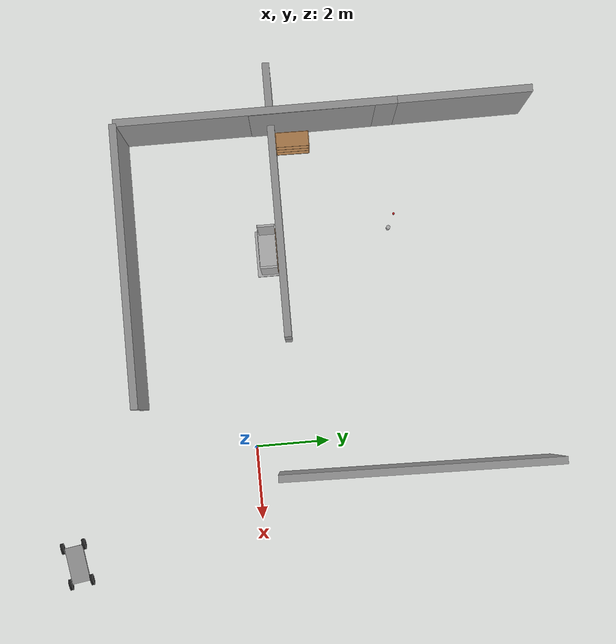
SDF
<sdf version="1.4">
 <world name="default">
  <model name="ground_plane_0">
   <static>1</static>
   <link name="link">
    <collision name="collision">
     <geometry><plane><normal>0 0 1</normal><size>100 100</size></plane></geometry>
     <surface><friction><ode><mu>100</mu><mu2>50</mu2></ode></friction></surface>
    </collision>
    <visual name="visual">
     <cast_shadows>0</cast_shadows>
     <geometry><plane><normal>0 0 1</normal><size>100 100</size></plane></geometry>
     <material>
      <script><uri>file://media/materials/scripts/gazebo.material</uri><name>Gazebo/Grey</name></script>
     </material>
    </visual>
    <velocity_decay><linear>0</linear><angular>0</angular></velocity_decay>
   </link>
   <pose>0.497681 0 0 0 -0 0</pose>
  </model>
  <model name="beer">
   <link name="link">
    <pose>0 0 0.115 0 -0 0</pose>
    <inertial>
     <mass>0.39</mass>
     <inertia><ixx>0.00058</ixx><ixy>0</ixy><ixz>0</ixz><iyy>0.00058</iyy><iyz>0</iyz><izz>0.00019</izz></inertia>
    </inertial>
    <collision name="collision">
     <geometry><cylinder><radius>0.055</radius><length>0.23</length></cylinder></geometry>
    </collision>
    <visual name="visual">
     <geometry><cylinder><radius>0.055</radius><length>0.23</length></cylinder></geometry>
     <material>
      <script>
       <uri>model://beer/materials/scripts</uri>
       <uri>model://beer/materials/textures</uri>
       <name>Beer/Diffuse</name>
      </script>
     </material>
    </visual>
    <velocity_decay><linear>0</linear><angular>0</angular></velocity_decay>
   </link>
   <pose>-5.73272 4.12736 0.19375 -0.000974 -0.000256 2.303</pose>
   <static>0</static>
  </model>
  <model name="cart_rigid_suspension">
   <link name="chassis">
    <pose>0 0 0.15 0 -0 0</pose>
    <inertial>
     <pose>0.1 0 0 0 -0 0</pose>
     <mass>10</mass>
     <inertia>
      <ixx>0.216667</ixx>
      <iyy>0.841667</iyy>
      <izz>1.04167</izz>
      <ixy>0</ixy>
      <ixz>0</ixz>
      <iyz>0</iyz>
     </inertia>
    </inertial>
    <collision name="collision"><geometry><box><size>1 0.5 0.1</size></box></geometry></collision>
    <visual name="visual">
     <geometry><box><size>1 0.5 0.1</size></box></geometry>
     <material>
      <script><uri>file://media/materials/scripts/gazebo.material</uri><name>Gazebo/Grey</name></script>
     </material>
    </visual>
    <velocity_decay><linear>0</linear><angular>0</angular></velocity_decay>
   </link>
   <link name="wheel_front_left">
    <pose>0.5 0.298 0.15 -1.5708 0 0</pose>
    <inertial>
     <mass>0.5</mass>
     <inertia>
      <ixx>0.00307917</ixx>
      <iyy>0.00307917</iyy>
      <izz>0.005625</izz>
      <ixy>0</ixy>
      <ixz>0</ixz>
      <iyz>0</iyz>
     </inertia>
    </inertial>
    <collision name="collision">
     <geometry><cylinder><radius>0.15</radius><length>0.08</length></cylinder></geometry>
    </collision>
    <visual name="visual">
     <geometry><cylinder><radius>0.15</radius><length>0.08</length></cylinder></geometry>
     <material>
      <script><uri>file://media/materials/scripts/gazebo.material</uri><name>Gazebo/Black</name></script>
     </material>
    </visual>
    <velocity_decay><linear>0</linear><angular>0</angular></velocity_decay>
   </link>
   <joint name="wheel_front_left_spin" type="revolute">
    <parent>chassis</parent>
    <child>wheel_front_left</child>
    <axis><xyz>0 0 1</xyz><limit><lower>-1e+16</lower><upper>1e+16</upper></limit></axis>
   </joint>
   <link name="wheel_front_right">
    <pose>0.5 -0.298 0.15 -1.5708 0 0</pose>
    <inertial>
     <mass>0.5</mass>
     <inertia>
      <ixx>0.00307917</ixx>
      <iyy>0.00307917</iyy>
      <izz>0.005625</izz>
      <ixy>0</ixy>
      <ixz>0</ixz>
      <iyz>0</iyz>
     </inertia>
    </inertial>
    <collision name="collision">
     <geometry><cylinder><radius>0.15</radius><length>0.08</length></cylinder></geometry>
    </collision>
    <visual name="visual">
     <geometry><cylinder><radius>0.15</radius><length>0.08</length></cylinder></geometry>
     <material>
      <script><uri>file://media/materials/scripts/gazebo.material</uri><name>Gazebo/Black</name></script>
     </material>
    </visual>
    <velocity_decay><linear>0</linear><angular>0</angular></velocity_decay>
   </link>
   <joint name="wheel_front_right_spin" type="revolute">
    <parent>chassis</parent>
    <child>wheel_front_right</child>
    <axis><xyz>0 0 1</xyz><limit><lower>-1e+16</lower><upper>1e+16</upper></limit></axis>
   </joint>
   <link name="wheel_rear_left">
    <pose>-0.5 0.298 0.15 -1.5708 0 0</pose>
    <inertial>
     <mass>0.5</mass>
     <inertia>
      <ixx>0.00307917</ixx>
      <iyy>0.00307917</iyy>
      <izz>0.005625</izz>
      <ixy>0</ixy>
      <ixz>0</ixz>
      <iyz>0</iyz>
     </inertia>
    </inertial>
    <collision name="collision">
     <geometry><cylinder><radius>0.15</radius><length>0.08</length></cylinder></geometry>
    </collision>
    <visual name="visual">
     <geometry><cylinder><radius>0.15</radius><length>0.08</length></cylinder></geometry>
     <material>
      <script><uri>file://media/materials/scripts/gazebo.material</uri><name>Gazebo/Black</name></script>
     </material>
    </visual>
    <velocity_decay><linear>0</linear><angular>0</angular></velocity_decay>
   </link>
   <joint name="wheel_rear_left_spin" type="revolute">
    <parent>chassis</parent>
    <child>wheel_rear_left</child>
    <axis><xyz>0 0 1</xyz><limit><lower>-1e+16</lower><upper>1e+16</upper></limit></axis>
   </joint>
   <link name="wheel_rear_right">
    <pose>-0.5 -0.298 0.15 -1.5708 0 0</pose>
    <inertial>
     <mass>0.5</mass>
     <inertia>
      <ixx>0.00307917</ixx>
      <iyy>0.00307917</iyy>
      <izz>0.005625</izz>
      <ixy>0</ixy>
      <ixz>0</ixz>
      <iyz>0</iyz>
     </inertia>
    </inertial>
    <collision name="collision">
     <geometry><cylinder><radius>0.15</radius><length>0.08</length></cylinder></geometry>
    </collision>
    <visual name="visual">
     <geometry><cylinder><radius>0.15</radius><length>0.08</length></cylinder></geometry>
     <material>
      <script><uri>file://media/materials/scripts/gazebo.material</uri><name>Gazebo/Black</name></script>
     </material>
    </visual>
    <velocity_decay><linear>0</linear><angular>0</angular></velocity_decay>
   </link>
   <joint name="wheel_rear_right_spin" type="revolute">
    <parent>chassis</parent>
    <child>wheel_rear_right</child>
    <axis><xyz>0 0 1</xyz><limit><lower>-1e+16</lower><upper>1e+16</upper></limit></axis>
   </joint>
   <pose>2.80357 -5.17913 8.5e-05 0.000203 3.1e-05 0.154816</pose>
   <static>0</static>
  </model>
  <model name="frc2016_drawbridge">
   <link name="base">
    <inertial>
     <mass>10</mass>
     <pose>0 0 1 0 -0 0</pose>
     <inertia><ixx>3.64907</ixx><ixy>0</ixy><ixz>0</ixz><iyy>4.67075</iyy><iyz>0</iyz><izz>1.66649</izz></inertia>
    </inertial>
    <visual name="platform">
     <pose>0 0 0.0425 0 -0 0</pose>
     <geometry><box><size>1.27 0.5969 0.085</size></box></geometry>
    </visual>
    <collision name="platform">
     <pose>0 0 0.0425 0 -0 0</pose>
     <geometry><box><size>1.27 0.5969 0.085</size></box></geometry>
    </collision>
    <visual name="right_wall">
     <pose>0.55879 0.04444 0.889 0 -0 0</pose>
     <geometry><box><size>0.05715 0.45698 1.77165</size></box></geometry>
    </visual>
    <collision name="right_wall">
     <pose>0.55879 0.04444 0.889 0 -0 0</pose>
     <geometry><box><size>0.05715 0.45698 1.77165</size></box></geometry>
    </collision>
    <visual name="left_wall">
     <pose>-0.55879 0.04444 0.889 0 -0 0</pose>
     <geometry><box><size>0.05715 0.45698 1.77165</size></box></geometry>
    </visual>
    <collision name="left_wall">
     <pose>-0.55879 0.04444 0.889 0 -0 0</pose>
     <geometry><box><size>0.05715 0.45698 1.77165</size></box></geometry>
    </collision>
    <visual name="front_upper_wall">
     <pose>0 0.27611 1.84286 0 -0 0</pose>
     <geometry><box><size>1.1557 0.006347 0.254</size></box></geometry>
    </visual>
    <collision name="front_upper_wall">
     <pose>0 0.27611 1.84286 0 -0 0</pose>
     <geometry><box><size>1.1557 0.006347 0.254</size></box></geometry>
    </collision>
    <visual name="back_upper_wall">
     <pose>0 -0.18722 1.84286 0 -0 0</pose>
     <geometry><box><size>1.1557 0.006347 0.254</size></box></geometry>
    </visual>
    <collision name="back_upper_wall">
     <pose>0 -0.18722 1.84286 0 -0 0</pose>
     <geometry><box><size>1.1557 0.006347 0.254</size></box></geometry>
    </collision>
    <velocity_decay><linear>0</linear><angular>0</angular></velocity_decay>
   </link>
   <link name="bridge">
    <pose>0 0.28245 0.50577 0 -0 0</pose>
    <inertial>
     <mass>2</mass>
     <pose>0 -0.28245 -0.50577 0 -0 0</pose>
     <inertia>
      <ixx>0.139361</ixx>
      <ixy>0</ixy>
      <ixz>0</ixz>
      <iyy>0.357088</iyy>
      <iyz>0</iyz>
      <izz>0.217741</izz>
     </inertia>
    </inertial>
    <visual name="visual">
     <geometry><box><size>1.14298 0.006347 0.9144</size></box></geometry>
     <material><script><name>Gazebo/WoodFloor</name><uri>__default__</uri></script></material>
    </visual>
    <collision name="collision"><geometry><box><size>1.14298 0.006347 0.9144</size></box></geometry></collision>
    <velocity_decay><linear>0</linear><angular>0</angular></velocity_decay>
   </link>
   <joint name="bridge_joint" type="revolute">
    <pose>0 0 -0.4172 0 -0 0</pose>
    <parent>base</parent>
    <child>bridge</child>
    <axis><xyz>1 0 0</xyz><limit><lower>-2</lower><upper>0</upper></limit></axis>
   </joint>
   <pose>-5.31895 0.718081 0 0 -1e-06 -0.00063</pose>
   <static>0</static>
  </model>
  <model name="RoboCup SPL Ball_0">
   <static>0</static>
   <link name="ball">
    <inertial>
     <mass>0.0056</mass>
     <inertia>
      <ixx>2.37e-06</ixx>
      <iyy>2.37e-06</iyy>
      <izz>2.37e-06</izz>
      <ixy>0</ixy>
      <ixz>0</ixz>
      <iyz>0</iyz>
     </inertia>
    </inertial>
    <collision name="collision"><geometry><sphere><radius>0.0325</radius></sphere></geometry></collision>
    <visual name="visual">
     <geometry><sphere><radius>0.0325</radius></sphere></geometry>
     <material>
      <script><uri>file://media/materials/scripts/gazebo.material</uri><name>Gazebo/RedBright</name></script>
     </material>
    </visual>
    <velocity_decay><linear>0</linear><angular>0</angular></velocity_decay>
   </link>
   <pose>-6.12244 4.31862 0.226195 0.155685 -1.25458 1.90313</pose>
  </model>
  <model name="grey_wall_0">
   <static>1</static>
   <link name="link">
    <pose>0 0 1.4 0 -0 0</pose>
    <collision name="collision"><geometry><box><size>7.5 0.2 2.8</size></box></geometry></collision>
    <visual name="visual">
     <cast_shadows>0</cast_shadows>
     <geometry><box><size>7.5 0.2 2.8</size></box></geometry>
     <material>
      <script>
       <uri>model://grey_wall/materials/scripts</uri>
       <uri>model://grey_wall/materials/textures</uri>
       <name>vrc/grey_wall</name>
      </script>
     </material>
    </visual>
    <velocity_decay><linear>0</linear><angular>0</angular></velocity_decay>
   </link>
   <pose>-8.76574 0.752835 0 0 0 -1.57097</pose>
  </model>
  <model name="grey_wall_2">
   <static>1</static>
   <link name="link">
    <pose>0 0 1.4 0 -0 0</pose>
    <collision name="collision"><geometry><box><size>7.5 0.2 2.8</size></box></geometry></collision>
    <visual name="visual">
     <cast_shadows>0</cast_shadows>
     <geometry><box><size>7.5 0.2 2.8</size></box></geometry>
     <material>
      <script>
       <uri>model://grey_wall/materials/scripts</uri>
       <uri>model://grey_wall/materials/textures</uri>
       <name>vrc/grey_wall</name>
      </script>
     </material>
    </visual>
    <velocity_decay><linear>0</linear><angular>0</angular></velocity_decay>
   </link>
   <pose>-8.76656 4.31578 0 0 0 -1.56736</pose>
  </model>
  <model name="grey_wall_3">
   <static>1</static>
   <link name="link">
    <pose>0 0 1.4 0 -0 0</pose>
    <collision name="collision"><geometry><box><size>7.5 0.2 2.8</size></box></geometry></collision>
    <visual name="visual">
     <cast_shadows>0</cast_shadows>
     <geometry><box><size>7.5 0.2 2.8</size></box></geometry>
     <material>
      <script>
       <uri>model://grey_wall/materials/scripts</uri>
       <uri>model://grey_wall/materials/textures</uri>
       <name>vrc/grey_wall</name>
      </script>
     </material>
    </visual>
    <velocity_decay><linear>0</linear><angular>0</angular></velocity_decay>
   </link>
   <pose>-6.63685 1.11695 -1.429 0 -0 0</pose>
  </model>
  <model name="grey_wall_4">
   <static>1</static>
   <link name="link">
    <pose>0 0 1.4 0 -0 0</pose>
    <collision name="collision"><geometry><box><size>7.5 0.2 2.8</size></box></geometry></collision>
    <visual name="visual">
     <cast_shadows>0</cast_shadows>
     <geometry><box><size>7.5 0.2 2.8</size></box></geometry>
     <material>
      <script>
       <uri>model://grey_wall/materials/scripts</uri>
       <uri>model://grey_wall/materials/textures</uri>
       <name>vrc/grey_wall</name>
      </script>
     </material>
    </visual>
    <velocity_decay><linear>0</linear><angular>0</angular></velocity_decay>
   </link>
   <pose>-5 -3 0 0 -0 0</pose>
  </model>
  <model name="bookshelf_2">
   <static>1</static>
   <link name="link">
    <inertial><mass>1</mass></inertial>
    <collision name="back">
     <pose>0 0.005 0.6 0 -0 0</pose>
     <geometry><box><size>0.9 0.01 1.2</size></box></geometry>
    </collision>
    <visual name="visual1">
     <pose>0 0.005 0.6 0 -0 0</pose>
     <geometry><box><size>0.9 0.01 1.2</size></box></geometry>
     <material>
      <script><uri>file://media/materials/scripts/gazebo.material</uri><name>Gazebo/Wood</name></script>
     </material>
    </visual>
    <collision name="left_side">
     <pose>0.45 -0.195 0.6 0 -0 0</pose>
     <geometry><box><size>0.02 0.4 1.2</size></box></geometry>
    </collision>
    <visual name="visual2">
     <pose>0.45 -0.195 0.6 0 -0 0</pose>
     <geometry><box><size>0.02 0.4 1.2</size></box></geometry>
     <material>
      <script><uri>file://media/materials/scripts/gazebo.material</uri><name>Gazebo/Wood</name></script>
     </material>
    </visual>
    <collision name="right_side">
     <pose>-0.45 -0.195 0.6 0 -0 0</pose>
     <geometry><box><size>0.02 0.4 1.2</size></box></geometry>
    </collision>
    <visual name="visual3">
     <pose>-0.45 -0.195 0.6 0 -0 0</pose>
     <geometry><box><size>0.02 0.4 1.2</size></box></geometry>
     <material>
      <script><uri>file://media/materials/scripts/gazebo.material</uri><name>Gazebo/Wood</name></script>
     </material>
    </visual>
    <collision name="bottom">
     <pose>0 -0.195 0.03 0 -0 0</pose>
     <geometry><box><size>0.88 0.4 0.06</size></box></geometry>
    </collision>
    <visual name="visual4">
     <pose>0 -0.195 0.03 0 -0 0</pose>
     <geometry><box><size>0.88 0.4 0.06</size></box></geometry>
     <material>
      <script><uri>file://media/materials/scripts/gazebo.material</uri><name>Gazebo/Wood</name></script>
     </material>
    </visual>
    <collision name="top">
     <pose>0 -0.195 1.19 0 -0 0</pose>
     <geometry><box><size>0.88 0.4 0.02</size></box></geometry>
    </collision>
    <visual name="visual5">
     <pose>0 -0.195 1.19 0 -0 0</pose>
     <geometry><box><size>0.88 0.4 0.02</size></box></geometry>
     <material>
      <script><uri>file://media/materials/scripts/gazebo.material</uri><name>Gazebo/Wood</name></script>
     </material>
    </visual>
    <collision name="low_shelf">
     <pose>0 -0.195 0.43 0 -0 0</pose>
     <geometry><box><size>0.88 0.4 0.02</size></box></geometry>
    </collision>
    <visual name="visual6">
     <pose>0 -0.195 0.43 0 -0 0</pose>
     <geometry><box><size>0.88 0.4 0.02</size></box></geometry>
     <material>
      <script><uri>file://media/materials/scripts/gazebo.material</uri><name>Gazebo/Wood</name></script>
     </material>
    </visual>
    <collision name="high_shelf">
     <pose>0 -0.195 0.8 0 -0 0</pose>
     <geometry><box><size>0.88 0.4 0.02</size></box></geometry>
    </collision>
    <visual name="visual7">
     <pose>0 -0.195 0.8 0 -0 0</pose>
     <geometry><box><size>0.88 0.4 0.02</size></box></geometry>
     <material>
      <script><uri>file://media/materials/scripts/gazebo.material</uri><name>Gazebo/Wood</name></script>
     </material>
    </visual>
    <velocity_decay><linear>0</linear><angular>0</angular></velocity_decay>
   </link>
   <pose>-8.45581 1.67502 0 0 -0 1.55887</pose>
  </model>
  <model name="grey_wall_5">
   <static>1</static>
   <link name="link">
    <pose>0 0 1.4 0 -0 0</pose>
    <collision name="collision"><geometry><box><size>7.5 0.2 2.8</size></box></geometry></collision>
    <visual name="visual">
     <cast_shadows>0</cast_shadows>
     <geometry><box><size>7.5 0.2 2.8</size></box></geometry>
     <material>
      <script>
       <uri>model://grey_wall/materials/scripts</uri>
       <uri>model://grey_wall/materials/textures</uri>
       <name>vrc/grey_wall</name>
      </script>
     </material>
    </visual>
    <velocity_decay><linear>0</linear><angular>0</angular></velocity_decay>
   </link>
   <pose>0.913346 4.32192 -0 0 -0 1.55145</pose>
  </model>
 </world>
</sdf>
